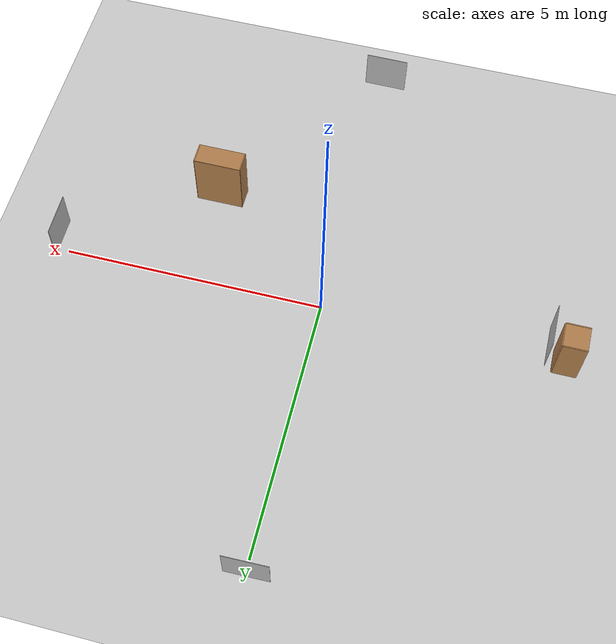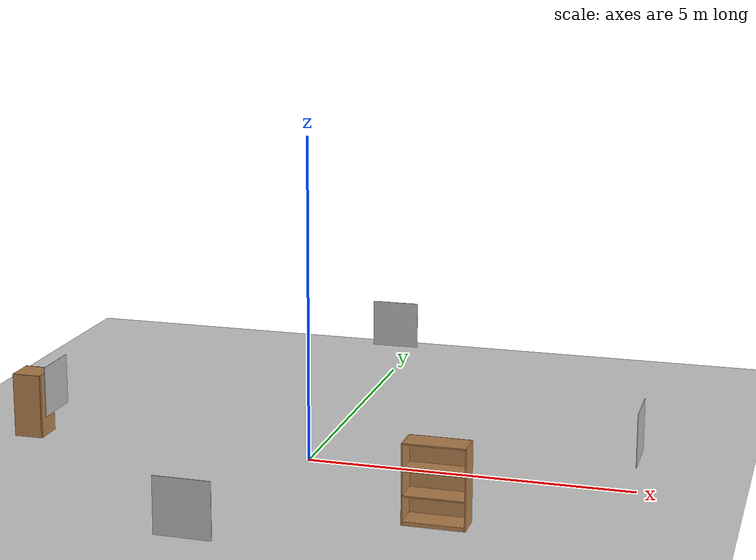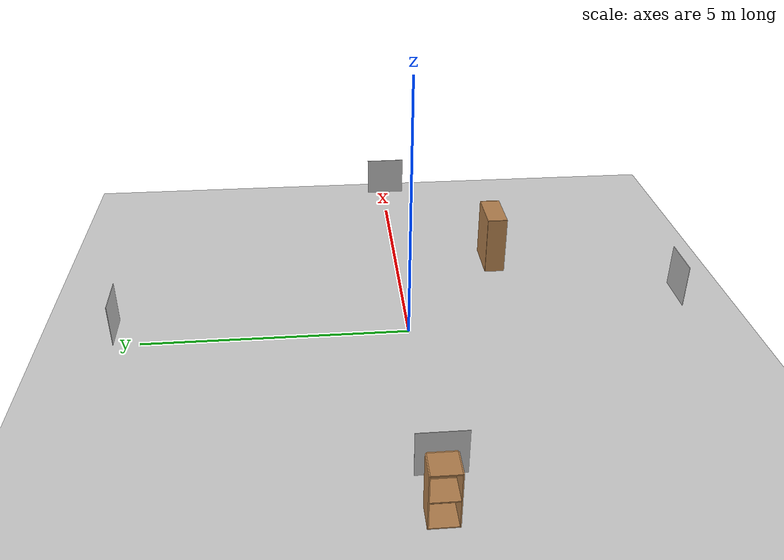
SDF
<sdf version="1.7">
 <world name="default">
  <light name="sun" type="directional">
   <pose>0 0 10 0 -0 0</pose>
   <diffuse>0.8 0.8 0.8 1</diffuse>
   <specular>0.2 0.2 0.2 1</specular>
   <attenuation>
    <range>1000</range>
    <constant>0.9</constant>
    <linear>0.01</linear>
    <quadratic>0.001</quadratic>
   </attenuation>
   <direction>-0.5 0.1 -0.9</direction>
   <spot><inner_angle>0</inner_angle><outer_angle>0</outer_angle><falloff>0</falloff></spot>
  </light>
  <model name="ground_plane">
   <static>1</static>
   <link name="link">
    <collision name="collision">
     <geometry><plane><normal>0 0 1</normal><size>100 100</size></plane></geometry>
     <surface><friction><ode><mu>100</mu><mu2>50</mu2></ode></friction></surface>
    </collision>
    <visual name="visual">
     <cast_shadows>0</cast_shadows>
     <geometry><plane><normal>0 0 1</normal><size>100 100</size></plane></geometry>
     <material>
      <script><uri>file://media/materials/scripts/gazebo.material</uri><name>Gazebo/Grey</name></script>
     </material>
    </visual>
   </link>
  </model>
  <gravity>0 0 -9.8</gravity>
  <magnetic_field>6e-06 2.3e-05 -4.2e-05</magnetic_field>
  <atmosphere type="adiabatic"/>
  <physics type="ode">
   <max_step_size>0.001</max_step_size>
   <real_time_factor>1</real_time_factor>
   <real_time_update_rate>1000</real_time_update_rate>
  </physics>
  <scene><ambient>0.4 0.4 0.4 1</ambient><background>0.7 0.7 0.7 1</background><shadows>1</shadows></scene>
  <audio><device>default</device></audio>
  <spherical_coordinates>
   <surface_model>EARTH_WGS84</surface_model>
   <latitude_deg>0</latitude_deg>
   <longitude_deg>0</longitude_deg>
   <elevation>0</elevation>
   <heading_deg>0</heading_deg>
  </spherical_coordinates>
  <model name="Apriltag36_11_00000">
   <link name="main">
    <visual name="main_Visual">
     <geometry><box><size>0.8 0.8 0.01</size></box></geometry>
     <material>
      <script>
       <uri>model://Apriltag36_11_00000/materials/scripts</uri>
       <uri>model://Apriltag36_11_00000/materials/textures</uri>
       <name>Apriltag36_11_00000</name>
      </script>
     </material>
    </visual>
   </link>
   <static>1</static>
   <pose>-0.095414 -5.01853 1.04115 1.58043 1.5705 3.14149</pose>
  </model>
  <model name="Apriltag36_11_00001">
   <link name="main">
    <visual name="main_Visual">
     <geometry><box><size>0.8 0.8 0.01</size></box></geometry>
     <material>
      <script>
       <uri>model://Apriltag36_11_00001/materials/scripts</uri>
       <uri>model://Apriltag36_11_00001/materials/textures</uri>
       <name>Apriltag36_11_00001</name>
      </script>
     </material>
    </visual>
   </link>
   <static>1</static>
   <pose>5.01709 0.026326 0.902699 3.12985 1.56802 0</pose>
  </model>
  <model name="Apriltag36_11_00002">
   <link name="main">
    <visual name="main_Visual">
     <geometry><box><size>0.8 0.8 0.01</size></box></geometry>
     <material>
      <script>
       <uri>model://Apriltag36_11_00002/materials/scripts</uri>
       <uri>model://Apriltag36_11_00002/materials/textures</uri>
       <name>Apriltag36_11_00002</name>
      </script>
     </material>
    </visual>
   </link>
   <static>1</static>
   <pose>-4.18245 -0.008414 0.826436 3.14159 1.57023 3.14159</pose>
  </model>
  <model name="Apriltag36_11_00004">
   <link name="main">
    <visual name="main_Visual">
     <geometry><box><size>0.8 0.8 0.01</size></box></geometry>
     <material>
      <script>
       <uri>model://Apriltag36_11_00004/materials/scripts</uri>
       <uri>model://Apriltag36_11_00004/materials/textures</uri>
       <name>Apriltag36_11_00004</name>
      </script>
     </material>
    </visual>
   </link>
   <static>1</static>
   <pose>-0.065681 5.36458 0.743556 -1.59237 1.57031 3.14158</pose>
  </model>
  <model name="cabinet">
   <static>1</static>
   <link name="cabinet_bottom_plate">
    <inertial>
     <pose>0 0 -1 0 -0 0</pose>
     <inertia><ixx>2.05</ixx><ixy>0</ixy><ixz>0</ixz><iyy>2.05</iyy><iyz>0</iyz><izz>2.05</izz></inertia>
     <mass>25</mass>
    </inertial>
    <collision name="cabinet_bottom_plate_geom">
     <pose>0 0 0.01 0 -0 0</pose>
     <geometry><box><size>0.45 0.45 0.02</size></box></geometry>
    </collision>
    <visual name="cabinet_bottom_plate_geom_visual">
     <pose>0 0 0.01 0 -0 0</pose>
     <geometry><box><size>0.45 0.45 0.02</size></box></geometry>
     <material>
      <script><uri>file://media/materials/scripts/gazebo.material</uri><name>Gazebo/Wood</name></script>
     </material>
    </visual>
    <collision name="cabinet_bottom_plate_geom_cabinet_back_plate">
     <pose>0.235 0 0.51 0 -0 0</pose>
     <geometry><box><size>0.02 0.45 1.02</size></box></geometry>
    </collision>
    <visual name="cabinet_bottom_plate_geom_cabinet_back_plate_visual">
     <pose>0.235 0 0.51 0 -0 0</pose>
     <geometry><box><size>0.02 0.45 1.02</size></box></geometry>
     <material>
      <script><uri>file://media/materials/scripts/gazebo.material</uri><name>Gazebo/Wood</name></script>
     </material>
    </visual>
    <collision name="cabinet_bottom_plate_geom_cabinet_left_plate">
     <pose>0 0.235 0.51 0 -0 0</pose>
     <geometry><box><size>0.45 0.02 1.02</size></box></geometry>
    </collision>
    <visual name="cabinet_bottom_plate_geom_cabinet_left_plate_visual">
     <pose>0 0.235 0.51 0 -0 0</pose>
     <geometry><box><size>0.45 0.02 1.02</size></box></geometry>
     <material>
      <script><uri>file://media/materials/scripts/gazebo.material</uri><name>Gazebo/Wood</name></script>
     </material>
    </visual>
    <collision name="cabinet_bottom_plate_geom_cabinet_middle_plate">
     <pose>0 0 0.51 0 -0 0</pose>
     <geometry><box><size>0.45 0.45 0.02</size></box></geometry>
    </collision>
    <visual name="cabinet_bottom_plate_geom_cabinet_middle_plate_visual">
     <pose>0 0 0.51 0 -0 0</pose>
     <geometry><box><size>0.45 0.45 0.02</size></box></geometry>
     <material>
      <script><uri>file://media/materials/scripts/gazebo.material</uri><name>Gazebo/Wood</name></script>
     </material>
    </visual>
    <collision name="cabinet_bottom_plate_geom_cabinet_right_plate">
     <pose>0 -0.235 0.51 0 -0 0</pose>
     <geometry><box><size>0.45 0.02 1.02</size></box></geometry>
    </collision>
    <visual name="cabinet_bottom_plate_geom_cabinet_right_plate_visual">
     <pose>0 -0.235 0.51 0 -0 0</pose>
     <geometry><box><size>0.45 0.02 1.02</size></box></geometry>
     <material>
      <script><uri>file://media/materials/scripts/gazebo.material</uri><name>Gazebo/Wood</name></script>
     </material>
    </visual>
    <collision name="cabinet_bottom_plate_geom_cabinet_top_plate">
     <pose>0 0 1.01 0 -0 0</pose>
     <geometry><box><size>0.45 0.45 0.02</size></box></geometry>
    </collision>
    <visual name="cabinet_bottom_plate_geom_cabinet_top_plate_visual">
     <pose>0 0 1.01 0 -0 0</pose>
     <geometry><box><size>0.45 0.45 0.02</size></box></geometry>
     <material>
      <script><uri>file://media/materials/scripts/gazebo.material</uri><name>Gazebo/Wood</name></script>
     </material>
    </visual>
   </link>
   <pose>-4.5962 0.023682 0 0 -0 0</pose>
  </model>
  <model name="bookshelf">
   <static>1</static>
   <link name="link">
    <inertial><mass>1</mass></inertial>
    <collision name="back">
     <pose>0 0.005 0.6 0 -0 0</pose>
     <geometry><box><size>0.9 0.01 1.2</size></box></geometry>
    </collision>
    <visual name="visual1">
     <pose>0 0.005 0.6 0 -0 0</pose>
     <geometry><box><size>0.9 0.01 1.2</size></box></geometry>
     <material>
      <script><uri>file://media/materials/scripts/gazebo.material</uri><name>Gazebo/Wood</name></script>
     </material>
    </visual>
    <collision name="left_side">
     <pose>0.45 -0.195 0.6 0 -0 0</pose>
     <geometry><box><size>0.02 0.4 1.2</size></box></geometry>
    </collision>
    <visual name="visual2">
     <pose>0.45 -0.195 0.6 0 -0 0</pose>
     <geometry><box><size>0.02 0.4 1.2</size></box></geometry>
     <material>
      <script><uri>file://media/materials/scripts/gazebo.material</uri><name>Gazebo/Wood</name></script>
     </material>
    </visual>
    <collision name="right_side">
     <pose>-0.45 -0.195 0.6 0 -0 0</pose>
     <geometry><box><size>0.02 0.4 1.2</size></box></geometry>
    </collision>
    <visual name="visual3">
     <pose>-0.45 -0.195 0.6 0 -0 0</pose>
     <geometry><box><size>0.02 0.4 1.2</size></box></geometry>
     <material>
      <script><uri>file://media/materials/scripts/gazebo.material</uri><name>Gazebo/Wood</name></script>
     </material>
    </visual>
    <collision name="bottom">
     <pose>0 -0.195 0.03 0 -0 0</pose>
     <geometry><box><size>0.88 0.4 0.06</size></box></geometry>
    </collision>
    <visual name="visual4">
     <pose>0 -0.195 0.03 0 -0 0</pose>
     <geometry><box><size>0.88 0.4 0.06</size></box></geometry>
     <material>
      <script><uri>file://media/materials/scripts/gazebo.material</uri><name>Gazebo/Wood</name></script>
     </material>
    </visual>
    <collision name="top">
     <pose>0 -0.195 1.19 0 -0 0</pose>
     <geometry><box><size>0.88 0.4 0.02</size></box></geometry>
    </collision>
    <visual name="visual5">
     <pose>0 -0.195 1.19 0 -0 0</pose>
     <geometry><box><size>0.88 0.4 0.02</size></box></geometry>
     <material>
      <script><uri>file://media/materials/scripts/gazebo.material</uri><name>Gazebo/Wood</name></script>
     </material>
    </visual>
    <collision name="low_shelf">
     <pose>0 -0.195 0.43 0 -0 0</pose>
     <geometry><box><size>0.88 0.4 0.02</size></box></geometry>
    </collision>
    <visual name="visual6">
     <pose>0 -0.195 0.43 0 -0 0</pose>
     <geometry><box><size>0.88 0.4 0.02</size></box></geometry>
     <material>
      <script><uri>file://media/materials/scripts/gazebo.material</uri><name>Gazebo/Wood</name></script>
     </material>
    </visual>
    <collision name="high_shelf">
     <pose>0 -0.195 0.8 0 -0 0</pose>
     <geometry><box><size>0.88 0.4 0.02</size></box></geometry>
    </collision>
    <visual name="visual7">
     <pose>0 -0.195 0.8 0 -0 0</pose>
     <geometry><box><size>0.88 0.4 0.02</size></box></geometry>
     <material>
      <script><uri>file://media/materials/scripts/gazebo.material</uri><name>Gazebo/Wood</name></script>
     </material>
    </visual>
   </link>
   <pose>2.49964 -1.84071 0 0 -0 0</pose>
  </model>
 </world>
</sdf>
